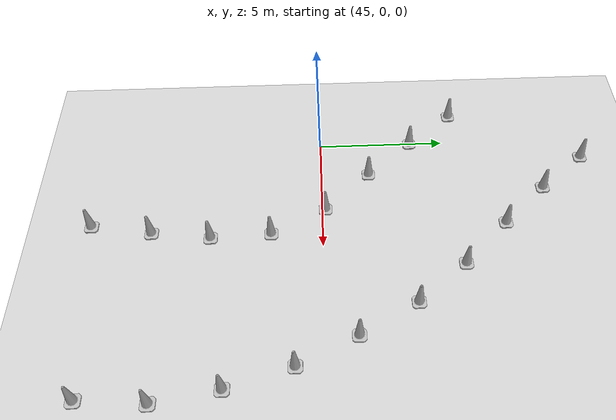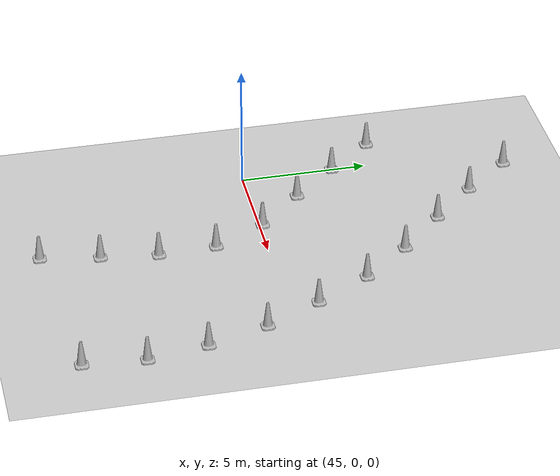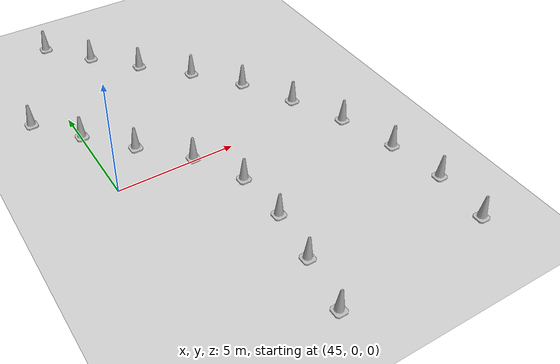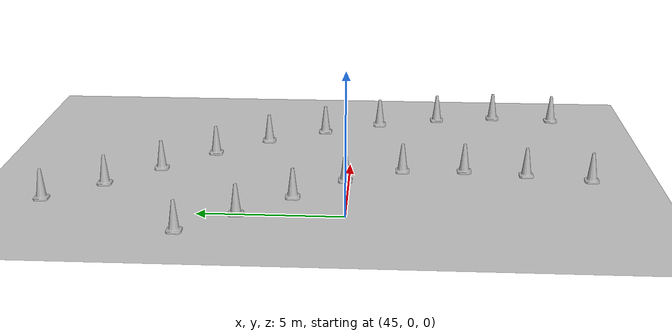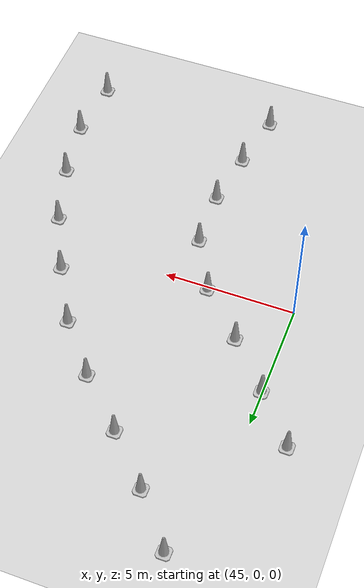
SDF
<sdf version="1.7">
 <world name="default">
  <model name="ground_plane">
   <static>1</static>
   <link name="link">
    <collision name="collision">
     <geometry><plane><normal>0 0 1</normal><size>125 125</size></plane></geometry>
     <surface>
      <contact><collide_bitmask>65535</collide_bitmask></contact>
      <friction><ode><mu>100</mu><mu2>50</mu2></ode></friction>
     </surface>
    </collision>
    <visual name="visual">
     <cast_shadows>0</cast_shadows>
     <geometry><plane><normal>0 0 1</normal><size>125 125</size></plane></geometry>
     <material>
      <script><uri>file://media/materials/scripts/gazebo.material</uri><name>Gazebo/Grey</name></script>
     </material>
    </visual>
   </link>
  </model>
  <model name="Construction Cone 133">
   <link name="link">
    <collision name="collision">
     <geometry>
      <mesh><scale>10 10 10</scale><uri>model://construction_cone/meshes/construction_cone.dae</uri></mesh>
     </geometry>
    </collision>
    <visual name="visual">
     <geometry>
      <mesh><scale>10 10 10</scale><uri>model://construction_cone/meshes/construction_cone.dae</uri></mesh>
     </geometry>
    </visual>
    <inertial>
     <inertia><ixx>1</ixx><ixy>0</ixy><ixz>0</ixz><iyy>1</iyy><iyz>0</iyz><izz>1</izz></inertia>
     <mass>1</mass>
    </inertial>
   </link>
   <pose>46.044748381191255 10.550355827656048 0 0 0 0</pose>
  </model>
  <model name="Construction Cone 141">
   <link name="link">
    <collision name="collision">
     <geometry>
      <mesh><scale>10 10 10</scale><uri>model://construction_cone/meshes/construction_cone.dae</uri></mesh>
     </geometry>
    </collision>
    <visual name="visual">
     <geometry>
      <mesh><scale>10 10 10</scale><uri>model://construction_cone/meshes/construction_cone.dae</uri></mesh>
     </geometry>
    </visual>
    <inertial>
     <inertia><ixx>1</ixx><ixy>0</ixy><ixz>0</ixz><iyy>1</iyy><iyz>0</iyz><izz>1</izz></inertia>
     <mass>1</mass>
    </inertial>
   </link>
   <pose>47.57474838119127 8.70535582765605 0 0 0 0</pose>
  </model>
  <model name="Construction Cone 153">
   <link name="link">
    <collision name="collision">
     <geometry>
      <mesh><scale>10 10 10</scale><uri>model://construction_cone/meshes/construction_cone.dae</uri></mesh>
     </geometry>
    </collision>
    <visual name="visual">
     <geometry>
      <mesh><scale>10 10 10</scale><uri>model://construction_cone/meshes/construction_cone.dae</uri></mesh>
     </geometry>
    </visual>
    <inertial>
     <inertia><ixx>1</ixx><ixy>0</ixy><ixz>0</ixz><iyy>1</iyy><iyz>0</iyz><izz>1</izz></inertia>
     <mass>1</mass>
    </inertial>
   </link>
   <pose>49.235248381191255 6.963855827656047 0 0 0 0</pose>
  </model>
  <model name="Construction Cone 159">
   <link name="link">
    <collision name="collision">
     <geometry>
      <mesh><scale>10 10 10</scale><uri>model://construction_cone/meshes/construction_cone.dae</uri></mesh>
     </geometry>
    </collision>
    <visual name="visual">
     <geometry>
      <mesh><scale>10 10 10</scale><uri>model://construction_cone/meshes/construction_cone.dae</uri></mesh>
     </geometry>
    </visual>
    <inertial>
     <inertia><ixx>1</ixx><ixy>0</ixy><ixz>0</ixz><iyy>1</iyy><iyz>0</iyz><izz>1</izz></inertia>
     <mass>1</mass>
    </inertial>
   </link>
   <pose>43.52474838119126 5.465355827656047 0 0 0 0</pose>
  </model>
  <model name="Construction Cone 161">
   <link name="link">
    <collision name="collision">
     <geometry>
      <mesh><scale>10 10 10</scale><uri>model://construction_cone/meshes/construction_cone.dae</uri></mesh>
     </geometry>
    </collision>
    <visual name="visual">
     <geometry>
      <mesh><scale>10 10 10</scale><uri>model://construction_cone/meshes/construction_cone.dae</uri></mesh>
     </geometry>
    </visual>
    <inertial>
     <inertia><ixx>1</ixx><ixy>0</ixy><ixz>0</ixz><iyy>1</iyy><iyz>0</iyz><izz>1</izz></inertia>
     <mass>1</mass>
    </inertial>
   </link>
   <pose>51.017248381191266 5.195355827656044 0 0 0 0</pose>
  </model>
  <model name="Construction Cone 166">
   <link name="link">
    <collision name="collision">
     <geometry>
      <mesh><scale>10 10 10</scale><uri>model://construction_cone/meshes/construction_cone.dae</uri></mesh>
     </geometry>
    </collision>
    <visual name="visual">
     <geometry>
      <mesh><scale>10 10 10</scale><uri>model://construction_cone/meshes/construction_cone.dae</uri></mesh>
     </geometry>
    </visual>
    <inertial>
     <inertia><ixx>1</ixx><ixy>0</ixy><ixz>0</ixz><iyy>1</iyy><iyz>0</iyz><izz>1</izz></inertia>
     <mass>1</mass>
    </inertial>
   </link>
   <pose>45.038676952619824 3.6621415419417644 0 0 0 0</pose>
  </model>
  <model name="Construction Cone 168">
   <link name="link">
    <collision name="collision">
     <geometry>
      <mesh><scale>10 10 10</scale><uri>model://construction_cone/meshes/construction_cone.dae</uri></mesh>
     </geometry>
    </collision>
    <visual name="visual">
     <geometry>
      <mesh><scale>10 10 10</scale><uri>model://construction_cone/meshes/construction_cone.dae</uri></mesh>
     </geometry>
    </visual>
    <inertial>
     <inertia><ixx>1</ixx><ixy>0</ixy><ixz>0</ixz><iyy>1</iyy><iyz>0</iyz><izz>1</izz></inertia>
     <mass>1</mass>
    </inertial>
   </link>
   <pose>52.56974838119126 3.305355827656051 0 0 0 0</pose>
  </model>
  <model name="Construction Cone 173">
   <link name="link">
    <collision name="collision">
     <geometry>
      <mesh><scale>10 10 10</scale><uri>model://construction_cone/meshes/construction_cone.dae</uri></mesh>
     </geometry>
    </collision>
    <visual name="visual">
     <geometry>
      <mesh><scale>10 10 10</scale><uri>model://construction_cone/meshes/construction_cone.dae</uri></mesh>
     </geometry>
    </visual>
    <inertial>
     <inertia><ixx>1</ixx><ixy>0</ixy><ixz>0</ixz><iyy>1</iyy><iyz>0</iyz><izz>1</izz></inertia>
     <mass>1</mass>
    </inertial>
   </link>
   <pose>46.62974838119126 1.8878558276560469 0 0 0 0</pose>
  </model>
  <model name="Construction Cone 176">
   <link name="link">
    <collision name="collision">
     <geometry>
      <mesh><scale>10 10 10</scale><uri>model://construction_cone/meshes/construction_cone.dae</uri></mesh>
     </geometry>
    </collision>
    <visual name="visual">
     <geometry>
      <mesh><scale>10 10 10</scale><uri>model://construction_cone/meshes/construction_cone.dae</uri></mesh>
     </geometry>
    </visual>
    <inertial>
     <inertia><ixx>1</ixx><ixy>0</ixy><ixz>0</ixz><iyy>1</iyy><iyz>0</iyz><izz>1</izz></inertia>
     <mass>1</mass>
    </inertial>
   </link>
   <pose>53.784748381191264 1.1453558276560472 0 0 0 0</pose>
  </model>
  <model name="Construction Cone 180">
   <link name="link">
    <collision name="collision">
     <geometry>
      <mesh><scale>10 10 10</scale><uri>model://construction_cone/meshes/construction_cone.dae</uri></mesh>
     </geometry>
    </collision>
    <visual name="visual">
     <geometry>
      <mesh><scale>10 10 10</scale><uri>model://construction_cone/meshes/construction_cone.dae</uri></mesh>
     </geometry>
    </visual>
    <inertial>
     <inertia><ixx>1</ixx><ixy>0</ixy><ixz>0</ixz><iyy>1</iyy><iyz>0</iyz><izz>1</izz></inertia>
     <mass>1</mass>
    </inertial>
   </link>
   <pose>48.31724838119126 0.1328558276560443 0 0 0 0</pose>
  </model>
  <model name="Construction Cone 185">
   <link name="link">
    <collision name="collision">
     <geometry>
      <mesh><scale>10 10 10</scale><uri>model://construction_cone/meshes/construction_cone.dae</uri></mesh>
     </geometry>
    </collision>
    <visual name="visual">
     <geometry>
      <mesh><scale>10 10 10</scale><uri>model://construction_cone/meshes/construction_cone.dae</uri></mesh>
     </geometry>
    </visual>
    <inertial>
     <inertia><ixx>1</ixx><ixy>0</ixy><ixz>0</ixz><iyy>1</iyy><iyz>0</iyz><izz>1</izz></inertia>
     <mass>1</mass>
    </inertial>
   </link>
   <pose>54.84224838119127 -1.0371441723439574 0 0 0 0</pose>
  </model>
  <model name="Construction Cone 190">
   <link name="link">
    <collision name="collision">
     <geometry>
      <mesh><scale>10 10 10</scale><uri>model://construction_cone/meshes/construction_cone.dae</uri></mesh>
     </geometry>
    </collision>
    <visual name="visual">
     <geometry>
      <mesh><scale>10 10 10</scale><uri>model://construction_cone/meshes/construction_cone.dae</uri></mesh>
     </geometry>
    </visual>
    <inertial>
     <inertia><ixx>1</ixx><ixy>0</ixy><ixz>0</ixz><iyy>1</iyy><iyz>0</iyz><izz>1</izz></inertia>
     <mass>1</mass>
    </inertial>
   </link>
   <pose>49.39724838119126 -1.925894172343952 0 0 0 0</pose>
  </model>
  <model name="Construction Cone 195">
   <link name="link">
    <collision name="collision">
     <geometry>
      <mesh><scale>10 10 10</scale><uri>model://construction_cone/meshes/construction_cone.dae</uri></mesh>
     </geometry>
    </collision>
    <visual name="visual">
     <geometry>
      <mesh><scale>10 10 10</scale><uri>model://construction_cone/meshes/construction_cone.dae</uri></mesh>
     </geometry>
    </visual>
    <inertial>
     <inertia><ixx>1</ixx><ixy>0</ixy><ixz>0</ixz><iyy>1</iyy><iyz>0</iyz><izz>1</izz></inertia>
     <mass>1</mass>
    </inertial>
   </link>
   <pose>55.55324838119127 -3.4041441723439547 0 0 0 0</pose>
  </model>
  <model name="Construction Cone 199">
   <link name="link">
    <collision name="collision">
     <geometry>
      <mesh><scale>10 10 10</scale><uri>model://construction_cone/meshes/construction_cone.dae</uri></mesh>
     </geometry>
    </collision>
    <visual name="visual">
     <geometry>
      <mesh><scale>10 10 10</scale><uri>model://construction_cone/meshes/construction_cone.dae</uri></mesh>
     </geometry>
    </visual>
    <inertial>
     <inertia><ixx>1</ixx><ixy>0</ixy><ixz>0</ixz><iyy>1</iyy><iyz>0</iyz><izz>1</izz></inertia>
     <mass>1</mass>
    </inertial>
   </link>
   <pose>49.49849838119127 -4.187144172343956 0 0 0 0</pose>
  </model>
  <model name="Construction Cone 206">
   <link name="link">
    <collision name="collision">
     <geometry>
      <mesh><scale>10 10 10</scale><uri>model://construction_cone/meshes/construction_cone.dae</uri></mesh>
     </geometry>
    </collision>
    <visual name="visual">
     <geometry>
      <mesh><scale>10 10 10</scale><uri>model://construction_cone/meshes/construction_cone.dae</uri></mesh>
     </geometry>
    </visual>
    <inertial>
     <inertia><ixx>1</ixx><ixy>0</ixy><ixz>0</ixz><iyy>1</iyy><iyz>0</iyz><izz>1</izz></inertia>
     <mass>1</mass>
    </inertial>
   </link>
   <pose>55.94474838119126 -5.739644172343951 0 0 0 0</pose>
  </model>
  <model name="Construction Cone 209">
   <link name="link">
    <collision name="collision">
     <geometry>
      <mesh><scale>10 10 10</scale><uri>model://construction_cone/meshes/construction_cone.dae</uri></mesh>
     </geometry>
    </collision>
    <visual name="visual">
     <geometry>
      <mesh><scale>10 10 10</scale><uri>model://construction_cone/meshes/construction_cone.dae</uri></mesh>
     </geometry>
    </visual>
    <inertial>
     <inertia><ixx>1</ixx><ixy>0</ixy><ixz>0</ixz><iyy>1</iyy><iyz>0</iyz><izz>1</izz></inertia>
     <mass>1</mass>
    </inertial>
   </link>
   <pose>49.19474838119126 -6.414644172343955 0 0 0 0</pose>
  </model>
  <model name="Construction Cone 218">
   <link name="link">
    <collision name="collision">
     <geometry>
      <mesh><scale>10 10 10</scale><uri>model://construction_cone/meshes/construction_cone.dae</uri></mesh>
     </geometry>
    </collision>
    <visual name="visual">
     <geometry>
      <mesh><scale>10 10 10</scale><uri>model://construction_cone/meshes/construction_cone.dae</uri></mesh>
     </geometry>
    </visual>
    <inertial>
     <inertia><ixx>1</ixx><ixy>0</ixy><ixz>0</ixz><iyy>1</iyy><iyz>0</iyz><izz>1</izz></inertia>
     <mass>1</mass>
    </inertial>
   </link>
   <pose>55.74224838119126 -8.135894172343953 0 0 0 0</pose>
  </model>
  <model name="Construction Cone 221">
   <link name="link">
    <collision name="collision">
     <geometry>
      <mesh><scale>10 10 10</scale><uri>model://construction_cone/meshes/construction_cone.dae</uri></mesh>
     </geometry>
    </collision>
    <visual name="visual">
     <geometry>
      <mesh><scale>10 10 10</scale><uri>model://construction_cone/meshes/construction_cone.dae</uri></mesh>
     </geometry>
    </visual>
    <inertial>
     <inertia><ixx>1</ixx><ixy>0</ixy><ixz>0</ixz><iyy>1</iyy><iyz>0</iyz><izz>1</izz></inertia>
     <mass>1</mass>
    </inertial>
   </link>
   <pose>48.78974838119126 -8.709644172343957 0 0 0 0</pose>
  </model>
 </world>
</sdf>
